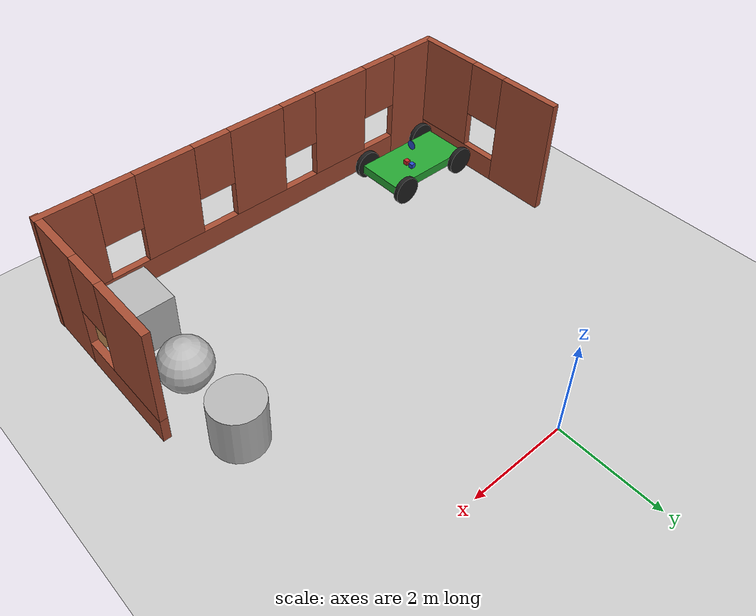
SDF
<sdf version="1.6">
 <world name="default">
  <model name="ground_plane">
   <static>1</static>
   <link name="link">
    <collision name="collision">
     <geometry><plane><normal>0 0 1</normal><size>100 100</size></plane></geometry>
     <surface>
      <contact><collide_bitmask>65535</collide_bitmask></contact>
      <friction><ode><mu>100</mu><mu2>50</mu2></ode></friction>
     </surface>
    </collision>
    <visual name="visual">
     <cast_shadows>0</cast_shadows>
     <geometry><plane><normal>0 0 1</normal><size>100 100</size></plane></geometry>
     <material>
      <script><uri>file://media/materials/scripts/gazebo.material</uri><name>Gazebo/Grey</name></script>
     </material>
    </visual>
   </link>
  </model>
  <model name="Building">
   <link name="Wall_0_clone">
    <pose>-4.53996 -4.60365 0 0 0 -1.5708</pose>
    <visual name="Wall_0_Visual_0">
     <pose>-1.09777 0 1.25 0 -0 0</pose>
     <geometry><box><size>1.30446 0.15 2.5</size></box></geometry>
     <material>
      <script><uri>file://media/materials/scripts/gazebo.material</uri><name>Gazebo/Bricks</name></script>
      <ambient>1 1 1 1</ambient>
      <shader type="pixel"/>
      <diffuse>1 1 1 1</diffuse>
      <specular>0.2 0.2 0.2 1</specular>
      <emissive>0 0 0 1</emissive>
     </material>
     <meta><layer>0</layer></meta>
    </visual>
    <visual name="Wall_0_Visual_2">
     <pose>1.05223 0 1.5 0 -0 0</pose>
     <geometry><box><size>1.39554 0.15 2</size></box></geometry>
     <material>
      <script><uri>file://media/materials/scripts/gazebo.material</uri><name>Gazebo/Bricks</name></script>
      <ambient>1 1 1 1</ambient>
      <shader type="pixel"/>
      <diffuse>1 1 1 1</diffuse>
      <specular>0.2 0.2 0.2 1</specular>
      <emissive>0 0 0 1</emissive>
     </material>
     <meta><layer>0</layer></meta>
    </visual>
    <visual name="Wall_0_Visual_1">
     <pose>0.652232 0 0.25 0 -0 0</pose>
     <geometry><box><size>2.19554 0.15 0.5</size></box></geometry>
     <material>
      <script><uri>file://media/materials/scripts/gazebo.material</uri><name>Gazebo/Bricks</name></script>
      <ambient>1 1 1 1</ambient>
      <shader type="pixel"/>
      <diffuse>1 1 1 1</diffuse>
      <specular>0.2 0.2 0.2 1</specular>
      <emissive>0 0 0 1</emissive>
     </material>
     <meta><layer>0</layer></meta>
    </visual>
    <visual name="Wall_0_Visual_3">
     <pose>-0.045536 0 1.9 0 -0 0</pose>
     <geometry><box><size>0.8 0.15 1.2</size></box></geometry>
     <material>
      <script><uri>file://media/materials/scripts/gazebo.material</uri><name>Gazebo/Bricks</name></script>
      <ambient>1 1 1 1</ambient>
      <shader type="pixel"/>
      <diffuse>1 1 1 1</diffuse>
      <specular>0.2 0.2 0.2 1</specular>
      <emissive>0 0 0 1</emissive>
     </material>
     <meta><layer>0</layer></meta>
    </visual>
    <collision name="Wall_0_Collision_1">
     <pose>0.652232 0 0.25 0 -0 0</pose>
     <geometry><box><size>2.19554 0.15 0.5</size></box></geometry>
     <surface>
      <friction>
       <ode><mu>1</mu><mu2>1</mu2><fdir1>0 0 0</fdir1><slip1>0</slip1><slip2>0</slip2></ode>
       <torsional>
        <coefficient>1</coefficient>
        <patch_radius>0</patch_radius>
        <surface_radius>0</surface_radius>
        <use_patch_radius>1</use_patch_radius>
        <ode><slip>0</slip></ode>
       </torsional>
      </friction>
      <bounce><restitution_coefficient>0</restitution_coefficient><threshold>1e+06</threshold></bounce>
      <contact>
       <collide_without_contact>0</collide_without_contact>
       <collide_without_contact_bitmask>1</collide_without_contact_bitmask>
       <collide_bitmask>1</collide_bitmask>
       <ode>
        <soft_cfm>0</soft_cfm>
        <soft_erp>0.2</soft_erp>
        <kp>1e+13</kp>
        <kd>1</kd>
        <max_vel>0.01</max_vel>
        <min_depth>0</min_depth>
       </ode>
       <bullet>
        <split_impulse>1</split_impulse>
        <split_impulse_penetration_threshold>-0.01</split_impulse_penetration_threshold>
        <soft_cfm>0</soft_cfm>
        <soft_erp>0.2</soft_erp>
        <kp>1e+13</kp>
        <kd>1</kd>
       </bullet>
      </contact>
     </surface>
    </collision>
    <collision name="Wall_0_Collision_0">
     <pose>-1.09777 0 1.25 0 -0 0</pose>
     <geometry><box><size>1.30446 0.15 2.5</size></box></geometry>
     <surface>
      <friction>
       <ode><mu>1</mu><mu2>1</mu2><fdir1>0 0 0</fdir1><slip1>0</slip1><slip2>0</slip2></ode>
       <torsional>
        <coefficient>1</coefficient>
        <patch_radius>0</patch_radius>
        <surface_radius>0</surface_radius>
        <use_patch_radius>1</use_patch_radius>
        <ode><slip>0</slip></ode>
       </torsional>
      </friction>
      <bounce><restitution_coefficient>0</restitution_coefficient><threshold>1e+06</threshold></bounce>
      <contact>
       <collide_without_contact>0</collide_without_contact>
       <collide_without_contact_bitmask>1</collide_without_contact_bitmask>
       <collide_bitmask>1</collide_bitmask>
       <ode>
        <soft_cfm>0</soft_cfm>
        <soft_erp>0.2</soft_erp>
        <kp>1e+13</kp>
        <kd>1</kd>
        <max_vel>0.01</max_vel>
        <min_depth>0</min_depth>
       </ode>
       <bullet>
        <split_impulse>1</split_impulse>
        <split_impulse_penetration_threshold>-0.01</split_impulse_penetration_threshold>
        <soft_cfm>0</soft_cfm>
        <soft_erp>0.2</soft_erp>
        <kp>1e+13</kp>
        <kd>1</kd>
       </bullet>
      </contact>
     </surface>
    </collision>
    <collision name="Wall_0_Collision_2">
     <pose>1.05223 0 1.5 0 -0 0</pose>
     <geometry><box><size>1.39554 0.15 2</size></box></geometry>
     <surface>
      <friction>
       <ode><mu>1</mu><mu2>1</mu2><fdir1>0 0 0</fdir1><slip1>0</slip1><slip2>0</slip2></ode>
       <torsional>
        <coefficient>1</coefficient>
        <patch_radius>0</patch_radius>
        <surface_radius>0</surface_radius>
        <use_patch_radius>1</use_patch_radius>
        <ode><slip>0</slip></ode>
       </torsional>
      </friction>
      <bounce><restitution_coefficient>0</restitution_coefficient><threshold>1e+06</threshold></bounce>
      <contact>
       <collide_without_contact>0</collide_without_contact>
       <collide_without_contact_bitmask>1</collide_without_contact_bitmask>
       <collide_bitmask>1</collide_bitmask>
       <ode>
        <soft_cfm>0</soft_cfm>
        <soft_erp>0.2</soft_erp>
        <kp>1e+13</kp>
        <kd>1</kd>
        <max_vel>0.01</max_vel>
        <min_depth>0</min_depth>
       </ode>
       <bullet>
        <split_impulse>1</split_impulse>
        <split_impulse_penetration_threshold>-0.01</split_impulse_penetration_threshold>
        <soft_cfm>0</soft_cfm>
        <soft_erp>0.2</soft_erp>
        <kp>1e+13</kp>
        <kd>1</kd>
       </bullet>
      </contact>
     </surface>
    </collision>
    <collision name="Wall_0_Collision_3">
     <pose>-0.045536 0 1.9 0 -0 0</pose>
     <geometry><box><size>0.8 0.15 1.2</size></box></geometry>
     <surface>
      <friction>
       <ode><mu>1</mu><mu2>1</mu2><fdir1>0 0 0</fdir1><slip1>0</slip1><slip2>0</slip2></ode>
       <torsional>
        <coefficient>1</coefficient>
        <patch_radius>0</patch_radius>
        <surface_radius>0</surface_radius>
        <use_patch_radius>1</use_patch_radius>
        <ode><slip>0</slip></ode>
       </torsional>
      </friction>
      <bounce><restitution_coefficient>0</restitution_coefficient><threshold>1e+06</threshold></bounce>
      <contact>
       <collide_without_contact>0</collide_without_contact>
       <collide_without_contact_bitmask>1</collide_without_contact_bitmask>
       <collide_bitmask>1</collide_bitmask>
       <ode>
        <soft_cfm>0</soft_cfm>
        <soft_erp>0.2</soft_erp>
        <kp>1e+13</kp>
        <kd>1</kd>
        <max_vel>0.01</max_vel>
        <min_depth>0</min_depth>
       </ode>
       <bullet>
        <split_impulse>1</split_impulse>
        <split_impulse_penetration_threshold>-0.01</split_impulse_penetration_threshold>
        <soft_cfm>0</soft_cfm>
        <soft_erp>0.2</soft_erp>
        <kp>1e+13</kp>
        <kd>1</kd>
       </bullet>
      </contact>
     </surface>
    </collision>
   </link>
   <link name="Wall_1">
    <pose>0.010523 -6.30946 0 0 -0 0</pose>
    <visual name="Wall_1_Visual_0">
     <pose>-4.05675 0 1.25 0 -0 0</pose>
     <geometry><box><size>1.1365 0.15 2.5</size></box></geometry>
     <material>
      <script><uri>file://media/materials/scripts/gazebo.material</uri><name>Gazebo/Bricks</name></script>
      <ambient>1 1 1 1</ambient>
      <shader type="pixel"/>
      <diffuse>1 1 1 1</diffuse>
      <specular>0.2 0.2 0.2 1</specular>
      <emissive>0 0 0 1</emissive>
     </material>
     <meta><layer>0</layer></meta>
    </visual>
    <visual name="Wall_1_Visual_1">
     <pose>0.568248 0 0.25 0 -0 0</pose>
     <geometry><box><size>8.1135 0.15 0.5</size></box></geometry>
     <material>
      <script><uri>file://media/materials/scripts/gazebo.material</uri><name>Gazebo/Bricks</name></script>
      <ambient>1 1 1 1</ambient>
      <shader type="pixel"/>
      <diffuse>1 1 1 1</diffuse>
      <specular>0.2 0.2 0.2 1</specular>
      <emissive>0 0 0 1</emissive>
     </material>
     <meta><layer>0</layer></meta>
    </visual>
    <visual name="Wall_1_Visual_2">
     <pose>-2.01945 0 1.5 0 -0 0</pose>
     <geometry><box><size>1.3381 0.15 2</size></box></geometry>
     <material>
      <script><uri>file://media/materials/scripts/gazebo.material</uri><name>Gazebo/Bricks</name></script>
      <ambient>1 1 1 1</ambient>
      <shader type="pixel"/>
      <diffuse>1 1 1 1</diffuse>
      <specular>0.2 0.2 0.2 1</specular>
      <emissive>0 0 0 1</emissive>
     </material>
     <meta><layer>0</layer></meta>
    </visual>
    <visual name="Wall_1_Visual_3">
     <pose>0.067744 0 1.5 0 -0 0</pose>
     <geometry><box><size>1.23629 0.15 2</size></box></geometry>
     <material>
      <script><uri>file://media/materials/scripts/gazebo.material</uri><name>Gazebo/Bricks</name></script>
      <ambient>1 1 1 1</ambient>
      <shader type="pixel"/>
      <diffuse>1 1 1 1</diffuse>
      <specular>0.2 0.2 0.2 1</specular>
      <emissive>0 0 0 1</emissive>
     </material>
     <meta><layer>0</layer></meta>
    </visual>
    <visual name="Wall_1_Visual_4">
     <pose>2.10403 0 1.5 0 -0 0</pose>
     <geometry><box><size>1.23629 0.15 2</size></box></geometry>
     <material>
      <script><uri>file://media/materials/scripts/gazebo.material</uri><name>Gazebo/Bricks</name></script>
      <ambient>1 1 1 1</ambient>
      <shader type="pixel"/>
      <diffuse>1 1 1 1</diffuse>
      <specular>0.2 0.2 0.2 1</specular>
      <emissive>0 0 0 1</emissive>
     </material>
     <meta><layer>0</layer></meta>
    </visual>
    <visual name="Wall_1_Visual_5">
     <pose>4.07359 0 1.5 0 -0 0</pose>
     <geometry><box><size>1.10282 0.15 2</size></box></geometry>
     <material>
      <script><uri>file://media/materials/scripts/gazebo.material</uri><name>Gazebo/Bricks</name></script>
      <ambient>1 1 1 1</ambient>
      <shader type="pixel"/>
      <diffuse>1 1 1 1</diffuse>
      <specular>0.2 0.2 0.2 1</specular>
      <emissive>0 0 0 1</emissive>
     </material>
     <meta><layer>0</layer></meta>
    </visual>
    <visual name="Wall_1_Visual_6">
     <pose>-3.0885 0 1.9 0 -0 0</pose>
     <geometry><box><size>0.8 0.15 1.2</size></box></geometry>
     <material>
      <script><uri>file://media/materials/scripts/gazebo.material</uri><name>Gazebo/Bricks</name></script>
      <ambient>1 1 1 1</ambient>
      <shader type="pixel"/>
      <diffuse>1 1 1 1</diffuse>
      <specular>0.2 0.2 0.2 1</specular>
      <emissive>0 0 0 1</emissive>
     </material>
     <meta><layer>0</layer></meta>
    </visual>
    <visual name="Wall_1_Visual_7">
     <pose>-0.950401 0 1.9 0 -0 0</pose>
     <geometry><box><size>0.8 0.15 1.2</size></box></geometry>
     <material>
      <script><uri>file://media/materials/scripts/gazebo.material</uri><name>Gazebo/Bricks</name></script>
      <ambient>1 1 1 1</ambient>
      <shader type="pixel"/>
      <diffuse>1 1 1 1</diffuse>
      <specular>0.2 0.2 0.2 1</specular>
      <emissive>0 0 0 1</emissive>
     </material>
     <meta><layer>0</layer></meta>
    </visual>
    <visual name="Wall_1_Visual_8">
     <pose>1.08589 0 1.9 0 -0 0</pose>
     <geometry><box><size>0.8 0.15 1.2</size></box></geometry>
     <material>
      <script><uri>file://media/materials/scripts/gazebo.material</uri><name>Gazebo/Bricks</name></script>
      <ambient>1 1 1 1</ambient>
      <shader type="pixel"/>
      <diffuse>1 1 1 1</diffuse>
      <specular>0.2 0.2 0.2 1</specular>
      <emissive>0 0 0 1</emissive>
     </material>
     <meta><layer>0</layer></meta>
    </visual>
    <visual name="Wall_1_Visual_9">
     <pose>3.12218 0 1.9 0 -0 0</pose>
     <geometry><box><size>0.8 0.15 1.2</size></box></geometry>
     <material>
      <script><uri>file://media/materials/scripts/gazebo.material</uri><name>Gazebo/Bricks</name></script>
      <ambient>1 1 1 1</ambient>
      <shader type="pixel"/>
      <diffuse>1 1 1 1</diffuse>
      <specular>0.2 0.2 0.2 1</specular>
      <emissive>0 0 0 1</emissive>
     </material>
     <meta><layer>0</layer></meta>
    </visual>
    <collision name="Wall_1_Collision_0">
     <pose>-4.05675 0 1.25 0 -0 0</pose>
     <geometry><box><size>1.1365 0.15 2.5</size></box></geometry>
     <surface>
      <friction>
       <ode><mu>1</mu><mu2>1</mu2><fdir1>0 0 0</fdir1><slip1>0</slip1><slip2>0</slip2></ode>
       <torsional>
        <coefficient>1</coefficient>
        <patch_radius>0</patch_radius>
        <surface_radius>0</surface_radius>
        <use_patch_radius>1</use_patch_radius>
        <ode><slip>0</slip></ode>
       </torsional>
      </friction>
      <bounce><restitution_coefficient>0</restitution_coefficient><threshold>1e+06</threshold></bounce>
      <contact>
       <collide_without_contact>0</collide_without_contact>
       <collide_without_contact_bitmask>1</collide_without_contact_bitmask>
       <collide_bitmask>1</collide_bitmask>
       <ode>
        <soft_cfm>0</soft_cfm>
        <soft_erp>0.2</soft_erp>
        <kp>1e+13</kp>
        <kd>1</kd>
        <max_vel>0.01</max_vel>
        <min_depth>0</min_depth>
       </ode>
       <bullet>
        <split_impulse>1</split_impulse>
        <split_impulse_penetration_threshold>-0.01</split_impulse_penetration_threshold>
        <soft_cfm>0</soft_cfm>
        <soft_erp>0.2</soft_erp>
        <kp>1e+13</kp>
        <kd>1</kd>
       </bullet>
      </contact>
     </surface>
    </collision>
    <collision name="Wall_1_Collision_1">
     <pose>0.568248 0 0.25 0 -0 0</pose>
     <geometry><box><size>8.1135 0.15 0.5</size></box></geometry>
     <surface>
      <friction>
       <ode><mu>1</mu><mu2>1</mu2><fdir1>0 0 0</fdir1><slip1>0</slip1><slip2>0</slip2></ode>
       <torsional>
        <coefficient>1</coefficient>
        <patch_radius>0</patch_radius>
        <surface_radius>0</surface_radius>
        <use_patch_radius>1</use_patch_radius>
        <ode><slip>0</slip></ode>
       </torsional>
      </friction>
      <bounce><restitution_coefficient>0</restitution_coefficient><threshold>1e+06</threshold></bounce>
      <contact>
       <collide_without_contact>0</collide_without_contact>
       <collide_without_contact_bitmask>1</collide_without_contact_bitmask>
       <collide_bitmask>1</collide_bitmask>
       <ode>
        <soft_cfm>0</soft_cfm>
        <soft_erp>0.2</soft_erp>
        <kp>1e+13</kp>
        <kd>1</kd>
        <max_vel>0.01</max_vel>
        <min_depth>0</min_depth>
       </ode>
       <bullet>
        <split_impulse>1</split_impulse>
        <split_impulse_penetration_threshold>-0.01</split_impulse_penetration_threshold>
        <soft_cfm>0</soft_cfm>
        <soft_erp>0.2</soft_erp>
        <kp>1e+13</kp>
        <kd>1</kd>
       </bullet>
      </contact>
     </surface>
    </collision>
    <collision name="Wall_1_Collision_2">
     <pose>-2.01945 0 1.5 0 -0 0</pose>
     <geometry><box><size>1.3381 0.15 2</size></box></geometry>
     <surface>
      <friction>
       <ode><mu>1</mu><mu2>1</mu2><fdir1>0 0 0</fdir1><slip1>0</slip1><slip2>0</slip2></ode>
       <torsional>
        <coefficient>1</coefficient>
        <patch_radius>0</patch_radius>
        <surface_radius>0</surface_radius>
        <use_patch_radius>1</use_patch_radius>
        <ode><slip>0</slip></ode>
       </torsional>
      </friction>
      <bounce><restitution_coefficient>0</restitution_coefficient><threshold>1e+06</threshold></bounce>
      <contact>
       <collide_without_contact>0</collide_without_contact>
       <collide_without_contact_bitmask>1</collide_without_contact_bitmask>
       <collide_bitmask>1</collide_bitmask>
       <ode>
        <soft_cfm>0</soft_cfm>
        <soft_erp>0.2</soft_erp>
        <kp>1e+13</kp>
        <kd>1</kd>
        <max_vel>0.01</max_vel>
        <min_depth>0</min_depth>
       </ode>
       <bullet>
        <split_impulse>1</split_impulse>
        <split_impulse_penetration_threshold>-0.01</split_impulse_penetration_threshold>
        <soft_cfm>0</soft_cfm>
        <soft_erp>0.2</soft_erp>
        <kp>1e+13</kp>
        <kd>1</kd>
       </bullet>
      </contact>
     </surface>
    </collision>
    <collision name="Wall_1_Collision_3">
     <pose>0.067744 0 1.5 0 -0 0</pose>
     <geometry><box><size>1.23629 0.15 2</size></box></geometry>
     <surface>
      <friction>
       <ode><mu>1</mu><mu2>1</mu2><fdir1>0 0 0</fdir1><slip1>0</slip1><slip2>0</slip2></ode>
       <torsional>
        <coefficient>1</coefficient>
        <patch_radius>0</patch_radius>
        <surface_radius>0</surface_radius>
        <use_patch_radius>1</use_patch_radius>
        <ode><slip>0</slip></ode>
       </torsional>
      </friction>
      <bounce><restitution_coefficient>0</restitution_coefficient><threshold>1e+06</threshold></bounce>
      <contact>
       <collide_without_contact>0</collide_without_contact>
       <collide_without_contact_bitmask>1</collide_without_contact_bitmask>
       <collide_bitmask>1</collide_bitmask>
       <ode>
        <soft_cfm>0</soft_cfm>
        <soft_erp>0.2</soft_erp>
        <kp>1e+13</kp>
        <kd>1</kd>
        <max_vel>0.01</max_vel>
        <min_depth>0</min_depth>
       </ode>
       <bullet>
        <split_impulse>1</split_impulse>
        <split_impulse_penetration_threshold>-0.01</split_impulse_penetration_threshold>
        <soft_cfm>0</soft_cfm>
        <soft_erp>0.2</soft_erp>
        <kp>1e+13</kp>
        <kd>1</kd>
       </bullet>
      </contact>
     </surface>
    </collision>
    <collision name="Wall_1_Collision_4">
     <pose>2.10403 0 1.5 0 -0 0</pose>
     <geometry><box><size>1.23629 0.15 2</size></box></geometry>
     <surface>
      <friction>
       <ode><mu>1</mu><mu2>1</mu2><fdir1>0 0 0</fdir1><slip1>0</slip1><slip2>0</slip2></ode>
       <torsional>
        <coefficient>1</coefficient>
        <patch_radius>0</patch_radius>
        <surface_radius>0</surface_radius>
        <use_patch_radius>1</use_patch_radius>
        <ode><slip>0</slip></ode>
       </torsional>
      </friction>
      <bounce><restitution_coefficient>0</restitution_coefficient><threshold>1e+06</threshold></bounce>
      <contact>
       <collide_without_contact>0</collide_without_contact>
       <collide_without_contact_bitmask>1</collide_without_contact_bitmask>
       <collide_bitmask>1</collide_bitmask>
       <ode>
        <soft_cfm>0</soft_cfm>
        <soft_erp>0.2</soft_erp>
        <kp>1e+13</kp>
        <kd>1</kd>
        <max_vel>0.01</max_vel>
        <min_depth>0</min_depth>
       </ode>
       <bullet>
        <split_impulse>1</split_impulse>
        <split_impulse_penetration_threshold>-0.01</split_impulse_penetration_threshold>
        <soft_cfm>0</soft_cfm>
        <soft_erp>0.2</soft_erp>
        <kp>1e+13</kp>
        <kd>1</kd>
       </bullet>
      </contact>
     </surface>
    </collision>
    <collision name="Wall_1_Collision_5">
     <pose>4.07359 0 1.5 0 -0 0</pose>
     <geometry><box><size>1.10282 0.15 2</size></box></geometry>
     <surface>
      <friction>
       <ode><mu>1</mu><mu2>1</mu2><fdir1>0 0 0</fdir1><slip1>0</slip1><slip2>0</slip2></ode>
       <torsional>
        <coefficient>1</coefficient>
        <patch_radius>0</patch_radius>
        <surface_radius>0</surface_radius>
        <use_patch_radius>1</use_patch_radius>
        <ode><slip>0</slip></ode>
       </torsional>
      </friction>
      <bounce><restitution_coefficient>0</restitution_coefficient><threshold>1e+06</threshold></bounce>
      <contact>
       <collide_without_contact>0</collide_without_contact>
       <collide_without_contact_bitmask>1</collide_without_contact_bitmask>
       <collide_bitmask>1</collide_bitmask>
       <ode>
        <soft_cfm>0</soft_cfm>
        <soft_erp>0.2</soft_erp>
        <kp>1e+13</kp>
        <kd>1</kd>
        <max_vel>0.01</max_vel>
        <min_depth>0</min_depth>
       </ode>
       <bullet>
        <split_impulse>1</split_impulse>
        <split_impulse_penetration_threshold>-0.01</split_impulse_penetration_threshold>
        <soft_cfm>0</soft_cfm>
        <soft_erp>0.2</soft_erp>
        <kp>1e+13</kp>
        <kd>1</kd>
       </bullet>
      </contact>
     </surface>
    </collision>
    <collision name="Wall_1_Collision_6">
     <pose>-3.0885 0 1.9 0 -0 0</pose>
     <geometry><box><size>0.8 0.15 1.2</size></box></geometry>
     <surface>
      <friction>
       <ode><mu>1</mu><mu2>1</mu2><fdir1>0 0 0</fdir1><slip1>0</slip1><slip2>0</slip2></ode>
       <torsional>
        <coefficient>1</coefficient>
        <patch_radius>0</patch_radius>
        <surface_radius>0</surface_radius>
        <use_patch_radius>1</use_patch_radius>
        <ode><slip>0</slip></ode>
       </torsional>
      </friction>
      <bounce><restitution_coefficient>0</restitution_coefficient><threshold>1e+06</threshold></bounce>
      <contact>
       <collide_without_contact>0</collide_without_contact>
       <collide_without_contact_bitmask>1</collide_without_contact_bitmask>
       <collide_bitmask>1</collide_bitmask>
       <ode>
        <soft_cfm>0</soft_cfm>
        <soft_erp>0.2</soft_erp>
        <kp>1e+13</kp>
        <kd>1</kd>
        <max_vel>0.01</max_vel>
        <min_depth>0</min_depth>
       </ode>
       <bullet>
        <split_impulse>1</split_impulse>
        <split_impulse_penetration_threshold>-0.01</split_impulse_penetration_threshold>
        <soft_cfm>0</soft_cfm>
        <soft_erp>0.2</soft_erp>
        <kp>1e+13</kp>
        <kd>1</kd>
       </bullet>
      </contact>
     </surface>
    </collision>
    <collision name="Wall_1_Collision_7">
     <pose>-0.950401 0 1.9 0 -0 0</pose>
     <geometry><box><size>0.8 0.15 1.2</size></box></geometry>
     <surface>
      <friction>
       <ode><mu>1</mu><mu2>1</mu2><fdir1>0 0 0</fdir1><slip1>0</slip1><slip2>0</slip2></ode>
       <torsional>
        <coefficient>1</coefficient>
        <patch_radius>0</patch_radius>
        <surface_radius>0</surface_radius>
        <use_patch_radius>1</use_patch_radius>
        <ode><slip>0</slip></ode>
       </torsional>
      </friction>
      <bounce><restitution_coefficient>0</restitution_coefficient><threshold>1e+06</threshold></bounce>
      <contact>
       <collide_without_contact>0</collide_without_contact>
       <collide_without_contact_bitmask>1</collide_without_contact_bitmask>
       <collide_bitmask>1</collide_bitmask>
       <ode>
        <soft_cfm>0</soft_cfm>
        <soft_erp>0.2</soft_erp>
        <kp>1e+13</kp>
        <kd>1</kd>
        <max_vel>0.01</max_vel>
        <min_depth>0</min_depth>
       </ode>
       <bullet>
        <split_impulse>1</split_impulse>
        <split_impulse_penetration_threshold>-0.01</split_impulse_penetration_threshold>
        <soft_cfm>0</soft_cfm>
        <soft_erp>0.2</soft_erp>
        <kp>1e+13</kp>
        <kd>1</kd>
       </bullet>
      </contact>
     </surface>
    </collision>
    <collision name="Wall_1_Collision_9">
     <pose>3.12218 0 1.9 0 -0 0</pose>
     <geometry><box><size>0.8 0.15 1.2</size></box></geometry>
     <surface>
      <friction>
       <ode><mu>1</mu><mu2>1</mu2><fdir1>0 0 0</fdir1><slip1>0</slip1><slip2>0</slip2></ode>
       <torsional>
        <coefficient>1</coefficient>
        <patch_radius>0</patch_radius>
        <surface_radius>0</surface_radius>
        <use_patch_radius>1</use_patch_radius>
        <ode><slip>0</slip></ode>
       </torsional>
      </friction>
      <bounce><restitution_coefficient>0</restitution_coefficient><threshold>1e+06</threshold></bounce>
      <contact>
       <collide_without_contact>0</collide_without_contact>
       <collide_without_contact_bitmask>1</collide_without_contact_bitmask>
       <collide_bitmask>1</collide_bitmask>
       <ode>
        <soft_cfm>0</soft_cfm>
        <soft_erp>0.2</soft_erp>
        <kp>1e+13</kp>
        <kd>1</kd>
        <max_vel>0.01</max_vel>
        <min_depth>0</min_depth>
       </ode>
       <bullet>
        <split_impulse>1</split_impulse>
        <split_impulse_penetration_threshold>-0.01</split_impulse_penetration_threshold>
        <soft_cfm>0</soft_cfm>
        <soft_erp>0.2</soft_erp>
        <kp>1e+13</kp>
        <kd>1</kd>
       </bullet>
      </contact>
     </surface>
    </collision>
    <collision name="Wall_1_Collision_8">
     <pose>1.08589 0 1.9 0 -0 0</pose>
     <geometry><box><size>0.8 0.15 1.2</size></box></geometry>
     <surface>
      <friction>
       <ode><mu>1</mu><mu2>1</mu2><fdir1>0 0 0</fdir1><slip1>0</slip1><slip2>0</slip2></ode>
       <torsional>
        <coefficient>1</coefficient>
        <patch_radius>0</patch_radius>
        <surface_radius>0</surface_radius>
        <use_patch_radius>1</use_patch_radius>
        <ode><slip>0</slip></ode>
       </torsional>
      </friction>
      <bounce><restitution_coefficient>0</restitution_coefficient><threshold>1e+06</threshold></bounce>
      <contact>
       <collide_without_contact>0</collide_without_contact>
       <collide_without_contact_bitmask>1</collide_without_contact_bitmask>
       <collide_bitmask>1</collide_bitmask>
       <ode>
        <soft_cfm>0</soft_cfm>
        <soft_erp>0.2</soft_erp>
        <kp>1e+13</kp>
        <kd>1</kd>
        <max_vel>0.01</max_vel>
        <min_depth>0</min_depth>
       </ode>
       <bullet>
        <split_impulse>1</split_impulse>
        <split_impulse_penetration_threshold>-0.01</split_impulse_penetration_threshold>
        <soft_cfm>0</soft_cfm>
        <soft_erp>0.2</soft_erp>
        <kp>1e+13</kp>
        <kd>1</kd>
       </bullet>
      </contact>
     </surface>
    </collision>
   </link>
   <link name="Wall_2_clone">
    <pose>4.54998 -4.66312 0 0 -0 1.5708</pose>
    <inertial>
     <mass>1</mass>
     <inertia><ixx>1</ixx><ixy>0</ixy><ixz>0</ixz><iyy>1</iyy><iyz>0</iyz><izz>1</izz></inertia>
    </inertial>
    <visual name="Wall_2_Visual_3">
     <pose>-0.03931 0 1.9 0 -0 0</pose>
     <geometry><box><size>0.8 0.15 1.2</size></box></geometry>
     <material>
      <script><uri>file://media/materials/scripts/gazebo.material</uri><name>Gazebo/Bricks</name></script>
      <ambient>1 1 1 1</ambient>
      <shader type="pixel"><normal_map>__default__</normal_map></shader>
      <diffuse>1 1 1 1</diffuse>
      <specular>0.2 0.2 0.2 1</specular>
      <emissive>0 0 0 1</emissive>
     </material>
     <meta><layer>0</layer></meta>
    </visual>
    <visual name="Wall_2_Visual_2">
     <pose>1.05534 0 1.5 0 -0 0</pose>
     <geometry><box><size>1.38931 0.15 2</size></box></geometry>
     <material>
      <script><uri>file://media/materials/scripts/gazebo.material</uri><name>Gazebo/Bricks</name></script>
      <ambient>1 1 1 1</ambient>
      <shader type="pixel"><normal_map>__default__</normal_map></shader>
      <diffuse>1 1 1 1</diffuse>
      <specular>0.2 0.2 0.2 1</specular>
      <emissive>0 0 0 1</emissive>
     </material>
     <meta><layer>0</layer></meta>
    </visual>
    <visual name="Wall_2_Visual_1">
     <pose>0.655345 0 0.25 0 -0 0</pose>
     <geometry><box><size>2.18931 0.15 0.5</size></box></geometry>
     <material>
      <script><uri>file://media/materials/scripts/gazebo.material</uri><name>Gazebo/Bricks</name></script>
      <ambient>1 1 1 1</ambient>
      <shader type="pixel"><normal_map>__default__</normal_map></shader>
      <diffuse>1 1 1 1</diffuse>
      <specular>0.2 0.2 0.2 1</specular>
      <emissive>0 0 0 1</emissive>
     </material>
     <meta><layer>0</layer></meta>
    </visual>
    <visual name="Wall_2_Visual_0">
     <pose>-1.09465 0 1.25 0 -0 0</pose>
     <geometry><box><size>1.31069 0.15 2.5</size></box></geometry>
     <material>
      <script><uri>file://media/materials/scripts/gazebo.material</uri><name>Gazebo/Bricks</name></script>
      <ambient>1 1 1 1</ambient>
      <shader type="pixel"><normal_map>__default__</normal_map></shader>
      <diffuse>1 1 1 1</diffuse>
      <specular>0.2 0.2 0.2 1</specular>
      <emissive>0 0 0 1</emissive>
     </material>
     <meta><layer>0</layer></meta>
    </visual>
    <collision name="Wall_2_Collision_3">
     <pose>-0.03931 0 1.9 0 -0 0</pose>
     <geometry><box><size>0.8 0.15 1.2</size></box></geometry>
     <surface>
      <friction>
       <ode><mu>1</mu><mu2>1</mu2><fdir1>0 0 0</fdir1><slip1>0</slip1><slip2>0</slip2></ode>
       <torsional>
        <coefficient>1</coefficient>
        <patch_radius>0</patch_radius>
        <surface_radius>0</surface_radius>
        <use_patch_radius>1</use_patch_radius>
        <ode><slip>0</slip></ode>
       </torsional>
      </friction>
      <bounce><restitution_coefficient>0</restitution_coefficient><threshold>1e+06</threshold></bounce>
      <contact>
       <collide_without_contact>0</collide_without_contact>
       <collide_without_contact_bitmask>1</collide_without_contact_bitmask>
       <collide_bitmask>1</collide_bitmask>
       <ode>
        <soft_cfm>0</soft_cfm>
        <soft_erp>0.2</soft_erp>
        <kp>1e+13</kp>
        <kd>1</kd>
        <max_vel>0.01</max_vel>
        <min_depth>0</min_depth>
       </ode>
       <bullet>
        <split_impulse>1</split_impulse>
        <split_impulse_penetration_threshold>-0.01</split_impulse_penetration_threshold>
        <soft_cfm>0</soft_cfm>
        <soft_erp>0.2</soft_erp>
        <kp>1e+13</kp>
        <kd>1</kd>
       </bullet>
      </contact>
     </surface>
    </collision>
    <collision name="Wall_2_Collision_1">
     <pose>0.655345 0 0.25 0 -0 0</pose>
     <geometry><box><size>2.18931 0.15 0.5</size></box></geometry>
     <surface>
      <friction>
       <ode><mu>1</mu><mu2>1</mu2><fdir1>0 0 0</fdir1><slip1>0</slip1><slip2>0</slip2></ode>
       <torsional>
        <coefficient>1</coefficient>
        <patch_radius>0</patch_radius>
        <surface_radius>0</surface_radius>
        <use_patch_radius>1</use_patch_radius>
        <ode><slip>0</slip></ode>
       </torsional>
      </friction>
      <bounce><restitution_coefficient>0</restitution_coefficient><threshold>1e+06</threshold></bounce>
      <contact>
       <collide_without_contact>0</collide_without_contact>
       <collide_without_contact_bitmask>1</collide_without_contact_bitmask>
       <collide_bitmask>1</collide_bitmask>
       <ode>
        <soft_cfm>0</soft_cfm>
        <soft_erp>0.2</soft_erp>
        <kp>1e+13</kp>
        <kd>1</kd>
        <max_vel>0.01</max_vel>
        <min_depth>0</min_depth>
       </ode>
       <bullet>
        <split_impulse>1</split_impulse>
        <split_impulse_penetration_threshold>-0.01</split_impulse_penetration_threshold>
        <soft_cfm>0</soft_cfm>
        <soft_erp>0.2</soft_erp>
        <kp>1e+13</kp>
        <kd>1</kd>
       </bullet>
      </contact>
     </surface>
    </collision>
    <collision name="Wall_2_Collision_0">
     <pose>-1.09465 0 1.25 0 -0 0</pose>
     <geometry><box><size>1.31069 0.15 2.5</size></box></geometry>
     <surface>
      <friction>
       <ode><mu>1</mu><mu2>1</mu2><fdir1>0 0 0</fdir1><slip1>0</slip1><slip2>0</slip2></ode>
       <torsional>
        <coefficient>1</coefficient>
        <patch_radius>0</patch_radius>
        <surface_radius>0</surface_radius>
        <use_patch_radius>1</use_patch_radius>
        <ode><slip>0</slip></ode>
       </torsional>
      </friction>
      <bounce><restitution_coefficient>0</restitution_coefficient><threshold>1e+06</threshold></bounce>
      <contact>
       <collide_without_contact>0</collide_without_contact>
       <collide_without_contact_bitmask>1</collide_without_contact_bitmask>
       <collide_bitmask>1</collide_bitmask>
       <ode>
        <soft_cfm>0</soft_cfm>
        <soft_erp>0.2</soft_erp>
        <kp>1e+13</kp>
        <kd>1</kd>
        <max_vel>0.01</max_vel>
        <min_depth>0</min_depth>
       </ode>
       <bullet>
        <split_impulse>1</split_impulse>
        <split_impulse_penetration_threshold>-0.01</split_impulse_penetration_threshold>
        <soft_cfm>0</soft_cfm>
        <soft_erp>0.2</soft_erp>
        <kp>1e+13</kp>
        <kd>1</kd>
       </bullet>
      </contact>
     </surface>
    </collision>
    <collision name="Wall_2_Collision_2">
     <pose>1.05534 0 1.5 0 -0 0</pose>
     <geometry><box><size>1.38931 0.15 2</size></box></geometry>
     <surface>
      <friction>
       <ode><mu>1</mu><mu2>1</mu2><fdir1>0 0 0</fdir1><slip1>0</slip1><slip2>0</slip2></ode>
       <torsional>
        <coefficient>1</coefficient>
        <patch_radius>0</patch_radius>
        <surface_radius>0</surface_radius>
        <use_patch_radius>1</use_patch_radius>
        <ode><slip>0</slip></ode>
       </torsional>
      </friction>
      <bounce><restitution_coefficient>0</restitution_coefficient><threshold>1e+06</threshold></bounce>
      <contact>
       <collide_without_contact>0</collide_without_contact>
       <collide_without_contact_bitmask>1</collide_without_contact_bitmask>
       <collide_bitmask>1</collide_bitmask>
       <ode>
        <soft_cfm>0</soft_cfm>
        <soft_erp>0.2</soft_erp>
        <kp>1e+13</kp>
        <kd>1</kd>
        <max_vel>0.01</max_vel>
        <min_depth>0</min_depth>
       </ode>
       <bullet>
        <split_impulse>1</split_impulse>
        <split_impulse_penetration_threshold>-0.01</split_impulse_penetration_threshold>
        <soft_cfm>0</soft_cfm>
        <soft_erp>0.2</soft_erp>
        <kp>1e+13</kp>
        <kd>1</kd>
       </bullet>
      </contact>
     </surface>
    </collision>
   </link>
   <static>1</static>
   <pose>0.39 -1.08 0 0 -0 0</pose>
  </model>
  <model name="cabinet_0">
   <static>1</static>
   <link name="cabinet_bottom_plate">
    <inertial>
     <pose>0 0 -1 0 -0 0</pose>
     <inertia><ixx>2.05</ixx><ixy>0</ixy><ixz>0</ixz><iyy>2.05</iyy><iyz>0</iyz><izz>2.05</izz></inertia>
     <mass>25</mass>
    </inertial>
    <collision name="cabinet_bottom_plate_geom">
     <pose>0 0 0.01 0 -0 0</pose>
     <geometry><box><size>0.45 0.45 0.02</size></box></geometry>
    </collision>
    <visual name="cabinet_bottom_plate_geom_visual">
     <pose>0 0 0.01 0 -0 0</pose>
     <geometry><box><size>0.45 0.45 0.02</size></box></geometry>
     <material>
      <script><uri>file://media/materials/scripts/gazebo.material</uri><name>Gazebo/Wood</name></script>
     </material>
    </visual>
    <collision name="cabinet_bottom_plate_geom_cabinet_back_plate">
     <pose>0.235 0 0.51 0 -0 0</pose>
     <geometry><box><size>0.02 0.45 1.02</size></box></geometry>
    </collision>
    <visual name="cabinet_bottom_plate_geom_cabinet_back_plate_visual">
     <pose>0.235 0 0.51 0 -0 0</pose>
     <geometry><box><size>0.02 0.45 1.02</size></box></geometry>
     <material>
      <script><uri>file://media/materials/scripts/gazebo.material</uri><name>Gazebo/Wood</name></script>
     </material>
    </visual>
    <collision name="cabinet_bottom_plate_geom_cabinet_left_plate">
     <pose>0 0.235 0.51 0 -0 0</pose>
     <geometry><box><size>0.45 0.02 1.02</size></box></geometry>
    </collision>
    <visual name="cabinet_bottom_plate_geom_cabinet_left_plate_visual">
     <pose>0 0.235 0.51 0 -0 0</pose>
     <geometry><box><size>0.45 0.02 1.02</size></box></geometry>
     <material>
      <script><uri>file://media/materials/scripts/gazebo.material</uri><name>Gazebo/Wood</name></script>
     </material>
    </visual>
    <collision name="cabinet_bottom_plate_geom_cabinet_middle_plate">
     <pose>0 0 0.51 0 -0 0</pose>
     <geometry><box><size>0.45 0.45 0.02</size></box></geometry>
    </collision>
    <visual name="cabinet_bottom_plate_geom_cabinet_middle_plate_visual">
     <pose>0 0 0.51 0 -0 0</pose>
     <geometry><box><size>0.45 0.45 0.02</size></box></geometry>
     <material>
      <script><uri>file://media/materials/scripts/gazebo.material</uri><name>Gazebo/Wood</name></script>
     </material>
    </visual>
    <collision name="cabinet_bottom_plate_geom_cabinet_right_plate">
     <pose>0 -0.235 0.51 0 -0 0</pose>
     <geometry><box><size>0.45 0.02 1.02</size></box></geometry>
    </collision>
    <visual name="cabinet_bottom_plate_geom_cabinet_right_plate_visual">
     <pose>0 -0.235 0.51 0 -0 0</pose>
     <geometry><box><size>0.45 0.02 1.02</size></box></geometry>
     <material>
      <script><uri>file://media/materials/scripts/gazebo.material</uri><name>Gazebo/Wood</name></script>
     </material>
    </visual>
    <collision name="cabinet_bottom_plate_geom_cabinet_top_plate">
     <pose>0 0 1.01 0 -0 0</pose>
     <geometry><box><size>0.45 0.45 0.02</size></box></geometry>
    </collision>
    <visual name="cabinet_bottom_plate_geom_cabinet_top_plate_visual">
     <pose>0 0 1.01 0 -0 0</pose>
     <geometry><box><size>0.45 0.45 0.02</size></box></geometry>
     <material>
      <script><uri>file://media/materials/scripts/gazebo.material</uri><name>Gazebo/Wood</name></script>
     </material>
    </visual>
   </link>
   <pose>4.75894 -6.61602 0 0 -0 0</pose>
  </model>
  <model name="car">
   <link name="chassis">
    <pose>0 0 0.3 0 -0 0</pose>
    <collision name="collision"><geometry><box><size>2 1 0.2</size></box></geometry></collision>
    <visual name="visual">
     <geometry><box><size>2 1 0.2</size></box></geometry>
     <material>
      <script><uri>file://media/materials/scripts/gazebo.material</uri><name>Gazebo/Green</name></script>
     </material>
    </visual>
    <inertial>
     <inertia><ixx>1</ixx><ixy>0</ixy><ixz>0</ixz><iyy>1</iyy><iyz>0</iyz><izz>1</izz></inertia>
     <mass>1</mass>
    </inertial>
   </link>
   <link name="front_left_wheel">
    <pose>0.8 0.6 0.3 -0 1.5707 1.5707</pose>
    <collision name="collision">
     <geometry><cylinder><radius>0.3</radius><length>0.1</length></cylinder></geometry>
    </collision>
    <visual name="visual">
     <geometry><cylinder><radius>0.3</radius><length>0.1</length></cylinder></geometry>
     <material>
      <script><uri>file://media/materials/scripts/gazebo.material</uri><name>Gazebo/Black</name></script>
     </material>
    </visual>
    <inertial>
     <inertia><ixx>1</ixx><ixy>0</ixy><ixz>0</ixz><iyy>1</iyy><iyz>0</iyz><izz>1</izz></inertia>
     <mass>1</mass>
    </inertial>
   </link>
   <link name="front_right_wheel">
    <pose>0.8 -0.6 0.3 -0 1.5707 1.5707</pose>
    <collision name="collision">
     <geometry><cylinder><radius>0.3</radius><length>0.1</length></cylinder></geometry>
    </collision>
    <visual name="visual">
     <geometry><cylinder><radius>0.3</radius><length>0.1</length></cylinder></geometry>
     <material>
      <script><uri>file://media/materials/scripts/gazebo.material</uri><name>Gazebo/Black</name></script>
     </material>
    </visual>
    <inertial>
     <inertia><ixx>1</ixx><ixy>0</ixy><ixz>0</ixz><iyy>1</iyy><iyz>0</iyz><izz>1</izz></inertia>
     <mass>1</mass>
    </inertial>
   </link>
   <link name="back_right_wheel">
    <pose>-0.8 -0.6 0.3 -0 1.5707 1.5707</pose>
    <collision name="collision">
     <geometry><cylinder><radius>0.3</radius><length>0.1</length></cylinder></geometry>
    </collision>
    <visual name="visual">
     <geometry><cylinder><radius>0.3</radius><length>0.1</length></cylinder></geometry>
     <material>
      <script><uri>file://media/materials/scripts/gazebo.material</uri><name>Gazebo/Black</name></script>
     </material>
    </visual>
    <inertial>
     <inertia><ixx>1</ixx><ixy>0</ixy><ixz>0</ixz><iyy>1</iyy><iyz>0</iyz><izz>1</izz></inertia>
     <mass>1</mass>
    </inertial>
   </link>
   <link name="back_left_wheel">
    <pose>-0.8 0.6 0.3 -0 1.5707 1.5707</pose>
    <collision name="collision">
     <geometry><cylinder><radius>0.3</radius><length>0.1</length></cylinder></geometry>
    </collision>
    <visual name="visual">
     <geometry><cylinder><radius>0.3</radius><length>0.1</length></cylinder></geometry>
     <material>
      <script><uri>file://media/materials/scripts/gazebo.material</uri><name>Gazebo/Black</name></script>
     </material>
    </visual>
    <inertial>
     <inertia><ixx>1</ixx><ixy>0</ixy><ixz>0</ixz><iyy>1</iyy><iyz>0</iyz><izz>1</izz></inertia>
     <mass>1</mass>
    </inertial>
   </link>
   <link name="gas_pedal">
    <pose>0.3 0.1 0.5 0 -0 0</pose>
    <collision name="collision"><geometry><box><size>0.1 0.1 0.1</size></box></geometry></collision>
    <visual name="visual">
     <geometry><box><size>0.1 0.1 0.1</size></box></geometry>
     <material>
      <script><uri>file://media/materials/scripts/gazebo.material</uri><name>Gazebo/Red</name></script>
     </material>
    </visual>
    <inertial>
     <inertia><ixx>1</ixx><ixy>0</ixy><ixz>0</ixz><iyy>1</iyy><iyz>0</iyz><izz>1</izz></inertia>
     <mass>1</mass>
    </inertial>
   </link>
   <link name="brake_pedal">
    <pose>0.3 0.25 0.5 0 -0 0</pose>
    <collision name="collision"><geometry><box><size>0.1 0.1 0.1</size></box></geometry></collision>
    <visual name="visual">
     <geometry><box><size>0.1 0.1 0.1</size></box></geometry>
     <material>
      <script><uri>file://media/materials/scripts/gazebo.material</uri><name>Gazebo/Blue</name></script>
     </material>
    </visual>
    <inertial>
     <inertia><ixx>1</ixx><ixy>0</ixy><ixz>0</ixz><iyy>1</iyy><iyz>0</iyz><izz>1</izz></inertia>
     <mass>1</mass>
    </inertial>
   </link>
   <link name="steering_wheel">
    <pose>0.3 0.2 1 0 1.5707 0</pose>
    <collision name="collision">
     <geometry><cylinder><radius>0.1</radius><length>0.01</length></cylinder></geometry>
    </collision>
    <visual name="visual">
     <geometry><cylinder><radius>0.1</radius><length>0.01</length></cylinder></geometry>
     <material>
      <script><uri>file://media/materials/scripts/gazebo.material</uri><name>Gazebo/Blue</name></script>
     </material>
    </visual>
    <inertial>
     <inertia><ixx>1</ixx><ixy>0</ixy><ixz>0</ixz><iyy>1</iyy><iyz>0</iyz><izz>1</izz></inertia>
     <mass>1</mass>
    </inertial>
   </link>
   <joint name="gas_joint" type="prismatic">
    <parent>chassis</parent>
    <child>gas_pedal</child>
    <axis>
     <xyz>1 0 0</xyz>
     <limit><lower>0</lower><upper>0.2</upper></limit>
     <use_parent_model_frame>1</use_parent_model_frame>
     <dynamics><spring_reference>0</spring_reference><spring_stiffness>0</spring_stiffness></dynamics>
    </axis>
   </joint>
   <joint name="brake_joint" type="prismatic">
    <parent>chassis</parent>
    <child>brake_pedal</child>
    <axis>
     <xyz>1 0 0</xyz>
     <limit><lower>0</lower><upper>0.2</upper></limit>
     <use_parent_model_frame>1</use_parent_model_frame>
     <dynamics><spring_reference>0</spring_reference><spring_stiffness>0</spring_stiffness></dynamics>
    </axis>
   </joint>
   <joint name="steering_joint" type="revolute">
    <parent>chassis</parent>
    <child>steering_wheel</child>
    <axis>
     <xyz>1 0 0</xyz>
     <limit><lower>-7.853</lower><upper>7.853</upper></limit>
     <use_parent_model_frame>1</use_parent_model_frame>
     <dynamics><spring_reference>0</spring_reference><spring_stiffness>0</spring_stiffness></dynamics>
    </axis>
   </joint>
   <joint name="front_left_joint" type="revolute2">
    <parent>chassis</parent>
    <child>front_left_wheel</child>
    <axis>
     <xyz>0 0 1</xyz>
     <limit><lower>8.70703e-06</lower><upper>8.70703e-06</upper></limit>
     <use_parent_model_frame>1</use_parent_model_frame>
     <dynamics><spring_reference>0</spring_reference><spring_stiffness>0</spring_stiffness></dynamics>
    </axis>
    <axis2>
     <xyz>0 1 0</xyz>
     <use_parent_model_frame>1</use_parent_model_frame>
     <dynamics><spring_reference>0</spring_reference><spring_stiffness>0</spring_stiffness></dynamics>
    </axis2>
    <physics><ode><limit><cfm>0</cfm><erp>0.9</erp></limit></ode></physics>
   </joint>
   <joint name="front_right_joint" type="revolute2">
    <parent>chassis</parent>
    <child>front_right_wheel</child>
    <axis>
     <xyz>0 0 1</xyz>
     <limit><lower>8.70703e-06</lower><upper>8.70703e-06</upper></limit>
     <use_parent_model_frame>1</use_parent_model_frame>
     <dynamics><spring_reference>0</spring_reference><spring_stiffness>0</spring_stiffness></dynamics>
    </axis>
    <axis2>
     <xyz>0 1 0</xyz>
     <use_parent_model_frame>1</use_parent_model_frame>
     <dynamics><spring_reference>0</spring_reference><spring_stiffness>0</spring_stiffness></dynamics>
    </axis2>
    <physics><ode><limit><cfm>0</cfm><erp>0.9</erp></limit></ode></physics>
   </joint>
   <joint name="back_right_joint" type="revolute2">
    <parent>chassis</parent>
    <child>back_right_wheel</child>
    <axis>
     <xyz>0 0 1</xyz>
     <limit><lower>0</lower><upper>0</upper></limit>
     <use_parent_model_frame>1</use_parent_model_frame>
     <dynamics><spring_reference>0</spring_reference><spring_stiffness>0</spring_stiffness></dynamics>
    </axis>
    <axis2>
     <xyz>0 1 0</xyz>
     <use_parent_model_frame>1</use_parent_model_frame>
     <dynamics><spring_reference>0</spring_reference><spring_stiffness>0</spring_stiffness></dynamics>
    </axis2>
    <physics><ode><limit><cfm>0</cfm><erp>0.9</erp></limit></ode></physics>
   </joint>
   <joint name="back_left_joint" type="revolute2">
    <parent>chassis</parent>
    <child>back_left_wheel</child>
    <axis>
     <xyz>0 0 1</xyz>
     <limit><lower>0</lower><upper>0</upper></limit>
     <use_parent_model_frame>1</use_parent_model_frame>
     <dynamics><spring_reference>0</spring_reference><spring_stiffness>0</spring_stiffness></dynamics>
    </axis>
    <axis2>
     <xyz>0 1 0</xyz>
     <use_parent_model_frame>1</use_parent_model_frame>
     <dynamics><spring_reference>0</spring_reference><spring_stiffness>0</spring_stiffness></dynamics>
    </axis2>
    <physics><ode><limit><cfm>0</cfm><erp>0.9</erp></limit></ode></physics>
   </joint>
   <plugin name="vehicle" filename="libVehiclePlugin.so">
    <front_left>front_left_joint</front_left>
    <front_right>front_right_joint</front_right>
    <back_left>back_left_joint</back_left>
    <back_right>back_right_joint</back_right>
    <gas>gas_joint</gas>
    <brake>brake_joint</brake>
    <steering>steering_joint</steering>
    <front_power>10</front_power>
    <rear_power>10</rear_power>
    <tire_angle_range>0.5</tire_angle_range>
    <max_speed>10</max_speed>
    <aero_load>0.1</aero_load>
   </plugin>
   <pose>-2.97506 -6.47931 -0.00262 -0.000274 0.000931 0.000273</pose>
  </model>
  <model name="textured_shapes">
   <pose>4.03374 -4.74405 0.5 0 -0 9.6e-05</pose>
   <link name="box">
    <pose>0 -1.5 0 0 -0 0</pose>
    <collision name="collision"><geometry><box><size>1 1 1</size></box></geometry></collision>
    <visual name="visual">
     <geometry><box><size>1 1 1</size></box></geometry>
     <material>
      <script>
       <uri>model://textured_shapes/materials/scripts</uri>
       <uri>model://textured_shapes/materials/textures</uri>
       <name>TexturedShape/Squares</name>
      </script>
     </material>
    </visual>
    <inertial>
     <inertia><ixx>1</ixx><ixy>0</ixy><ixz>0</ixz><iyy>1</iyy><iyz>0</iyz><izz>1</izz></inertia>
     <mass>1</mass>
    </inertial>
   </link>
   <link name="sphere">
    <collision name="collision"><geometry><sphere><radius>0.5</radius></sphere></geometry></collision>
    <visual name="visual">
     <geometry><sphere><radius>0.5</radius></sphere></geometry>
     <material>
      <script>
       <uri>model://textured_shapes/materials/scripts</uri>
       <uri>model://textured_shapes/materials/textures</uri>
       <name>TexturedShape/Squares</name>
      </script>
     </material>
    </visual>
    <inertial>
     <inertia><ixx>1</ixx><ixy>0</ixy><ixz>0</ixz><iyy>1</iyy><iyz>0</iyz><izz>1</izz></inertia>
     <mass>1</mass>
    </inertial>
   </link>
   <link name="cylinder">
    <pose>0 1.5 0 0 -0 0</pose>
    <collision name="collision">
     <geometry><cylinder><radius>0.5</radius><length>1</length></cylinder></geometry>
    </collision>
    <visual name="visual">
     <geometry><cylinder><radius>0.5</radius><length>1</length></cylinder></geometry>
     <material>
      <script>
       <uri>model://textured_shapes/materials/scripts</uri>
       <uri>model://textured_shapes/materials/textures</uri>
       <name>TexturedShape/Squares</name>
      </script>
     </material>
    </visual>
    <inertial>
     <inertia><ixx>1</ixx><ixy>0</ixy><ixz>0</ixz><iyy>1</iyy><iyz>0</iyz><izz>1</izz></inertia>
     <mass>1</mass>
    </inertial>
   </link>
  </model>
 </world>
</sdf>
